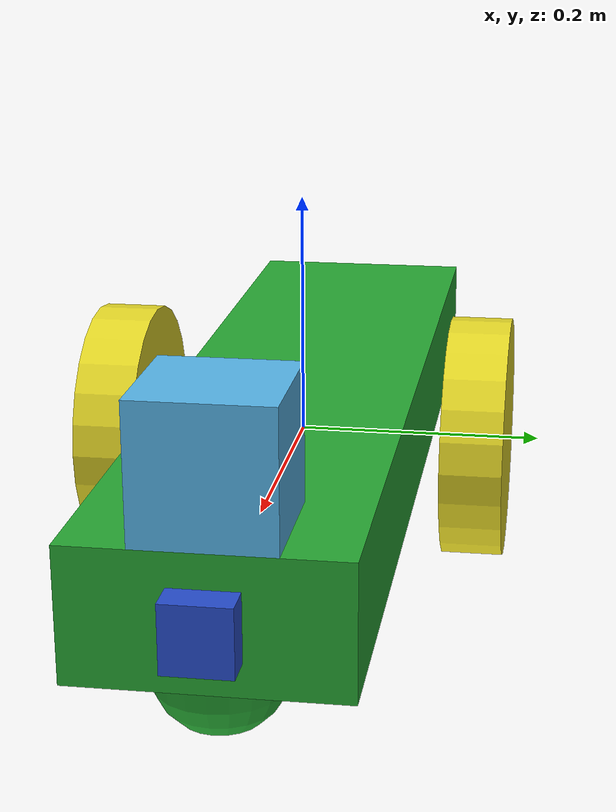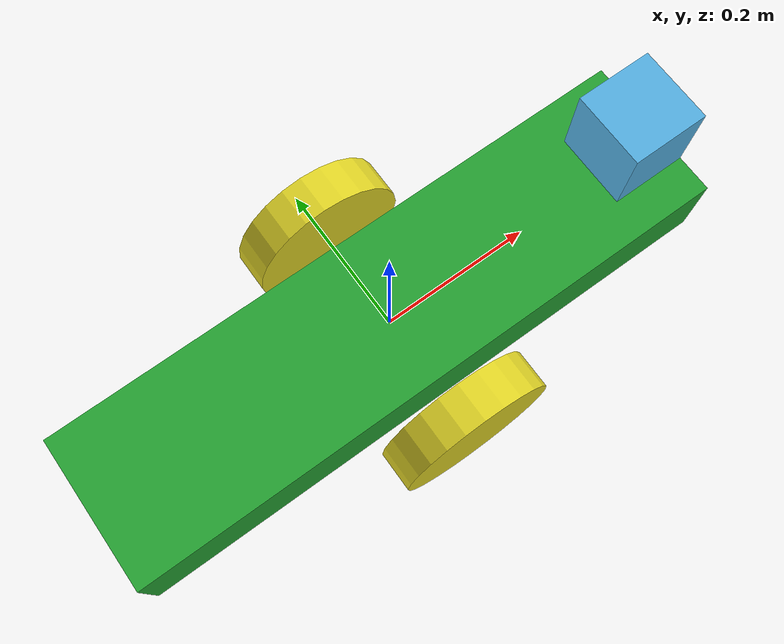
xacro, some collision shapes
<?xml version='1.0'?>

<robot name="myrobot" xmlns:xacro="http://www.ros.org/wiki/xacro">

  <xacro:property name="cameraSize" value="0.05"/>
  <xacro:property name="cameraMass" value="0.1"/>

  <xacro:include filename="$(find spcbot_description)/urdf/materials.xacro"/>
  <xacro:include filename="$(find spcbot_description)/urdf/spcbot.gazebo"/>

  <link name="robot_footprint"></link>

  <joint name="robot_footprint_joint" type="fixed">
    <origin xyz="0 0 0" rpy="0 0 0" />
    <parent link="robot_footprint"/>
    <child link="chassis" />
  </joint>

  <joint name="hokuyo_joint" type="fixed">
    <origin xyz="0.35 0 0.1" rpy="0 0 0" />
    <parent link="chassis"/>
    <child link="hokuyo" />
    <axis xyz="0 1 0" rpy="0 0 0"/>
  </joint>

  <link name='hokuyo'>
    <inertial>
    <origin xyz="0 0 0" rpy="0 0 0"/>
    <mass value="1e-5"/>
      <inertia
          ixx="1e-6" ixy="0" ixz="0"
          iyy="1e-6" iyz="0"
          izz="1e-6"
      />
    </inertial>

    <visual>
      <origin xyz="0 0 0" rpy="0 0 0"/>
      <geometry>
        <mesh filename="package://spcbot_description/meshes/hokuyo.dae"/>
      </geometry>
    </visual>

    <collision>
      <origin xyz="0 0 0" rpy="0 0 0"/>
      <geometry>
        <box size="0.1 0.1 0.1"/>
      </geometry>
    </collision>
  </link>

  <joint name="camera_joint" type="fixed">
    <origin xyz="0.4 0 0" rpy="0 0 0" />
    <parent link="chassis"/>
    <child link="camera" />
    <axis xyz="0 1 0" rpy="0 0 0"/>
  </joint>

  <link name='camera'>
    <inertial>
    <origin xyz="0 0 0" rpy="0 0 0"/>
    <mass value="0.1"/>
      <inertia
          ixx="1e-6" ixy="0" ixz="0"
          iyy="1e-6" iyz="0"
          izz="1e-6"
      />
    </inertial>

    <visual>
      <origin xyz="0 0 0" rpy="0 0 0"/>
      <geometry>
        <box size="0.05 0.05 0.05"/>
      </geometry>
    </visual>

    <collision>
      <origin xyz="0 0 0" rpy="0 0 0"/>
      <geometry>
        <box size="0.05 0.05 0.05"/>
      </geometry>
    </collision>
  </link>

  <joint name="left_wheel_hinge" type="continuous">
    <origin xyz="0 0.15 0" rpy="0 0 0" />
    <parent link="chassis"/>
    <child link="left_wheel" />
    <axis xyz="0 1 0" rpy="0 0 0"/>
    <limit effort="10000" velocity="1000"/>
    <dynamics damping="1.0" friction="1.0"/>
  </joint>

  <joint name="right_wheel_hinge" type="continuous">
    <origin xyz="0 0.15 0" rpy="0 0 0" />
    <parent link="chassis"/>
    <child link="right_wheel" />
    <axis xyz="0 1 0" rpy="0 0 0"/>
    <limit effort="10000" velocity="1000"/>
    <dynamics damping="1.0" friction="1.0"/>
  </joint>

  <link name='left_wheel'>
    <inertial>
    <origin xyz="0 0 0" rpy="0 1.5707 1.5707"/>
    <mass value="5"/>
      <inertia
          ixx="0.1" ixy="0" ixz="0"
          iyy="0.1" iyz="0"
          izz="0.1"
      />
    </inertial>

    <visual>
      <origin xyz="0 0 0" rpy="0 1.5707 1.5707"/>
      <geometry>
        <cylinder radius="0.1" length="0.05"/>
      </geometry>
    </visual>

    <collision>
      <origin xyz="0 0 0" rpy="0 1.5707 1.5707"/>
      <geometry>
        <cylinder radius="0.1" length="0.05"/>
      </geometry>
    </collision>
  </link>

  <link name='right_wheel'>
    <inertial>
    <origin xyz="0 -0.3 0" rpy="0 1.5707 1.5707"/>
    <mass value="5"/>
      <inertia
          ixx="0.1" ixy="0" ixz="0"
          iyy="0.1" iyz="0"
          izz="0.1"
      />
    </inertial>

    <visual>
      <origin xyz="0 -0.3 0" rpy="0 1.5707 1.5707"/>
      <geometry>
        <cylinder radius="0.1" length="0.05"/>
      </geometry>
    </visual>

    <collision>
      <origin xyz="0 -0.3 0" rpy="0 1.5707 1.5707"/>
      <geometry>
        <cylinder radius="0.1" length="0.05"/>
      </geometry>
    </collision>
  </link>

  <link name='chassis'>
    <pose>0 0 0.1 0 0 0</pose>

    <inertial>
      <mass value="15.0"/>
      <origin xyz="0.0 0 0" rpy=" 0 0 0"/>
      <inertia
          ixx="0.1" ixy="0" ixz="0"
          iyy="0.1" iyz="0"
          izz="0.1"
      />
    </inertial>

    <collision name='collision'>
      <origin xyz="0 0 0" rpy=" 0 0 0"/>
      <geometry>
        <box size=".4 .2 .1"/>
      </geometry>
    </collision>

    <visual name='chassis_visual'>
      <origin xyz="0 0 0" rpy=" 0 0 0"/>
      <geometry>
        <box size=".8 .2 .1"/>
      </geometry>
    </visual>

    <collision name='back_caster_collision'>
      <origin xyz="-0.35 0 -0.05" rpy=" 0 0 0"/>
      <geometry>
        <sphere radius="0.0499"/>
      </geometry>
    </collision>

    <visual name='back_caster_visual'>
      <origin xyz="-0.35 0 -0.05" rpy=" 0 0 0"/>
      <geometry>
        <sphere radius="0.05"/>
      </geometry>
    </visual>

    <collision name='front_caster_collision'>
      <origin xyz="0.35 0 -0.05" rpy=" 0 0 0"/>
      <geometry>
        <sphere radius="0.0499"/>
      </geometry>
    </collision>

    <visual name='front_caster_visual'>
      <origin xyz="0.35 0 -0.05" rpy=" 0 0 0"/>
      <geometry>
        <sphere radius="0.05"/>
      </geometry>
    </visual>

  </link>

  <gazebo reference="chassis">
    <material>Gazebo/Green</material>
  </gazebo>

  <gazebo reference="left_wheel">
    <material>Gazebo/Yellow</material>
  </gazebo>

  <gazebo reference="right_wheel">
    <material>Gazebo/Yellow</material>
  </gazebo>

  <gazebo reference="camera">
    <material>Gazebo/Blue</material>
  </gazebo>

</robot>

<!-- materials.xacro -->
<robot>

  <material name="black">
    <color rgba="0.0 0.0 0.0 1.0"/>
  </material>

  <material name="blue">
    <color rgba="0.0 0.0 0.8 1.0"/>
  </material>

  <material name="green">
    <color rgba="0.0 0.8 0.0 1.0"/>
  </material>

  <material name="grey">
    <color rgba="0.2 0.2 0.2 1.0"/>
  </material>

  <material name="orange">
    <color rgba="${255/255} ${108/255} ${10/255} 1.0"/>
  </material>

  <material name="brown">
    <color rgba="${222/255} ${207/255} ${195/255} 1.0"/>
  </material>

  <material name="red">
    <color rgba="0.8 0.0 0.0 1.0"/>
  </material>

  <material name="white">
    <color rgba="1.0 1.0 1.0 1.0"/>
  </material>

  <material name="yellow">
    <color rgba="1.0 1.0 0 1.0"/>
  </material>

</robot>
